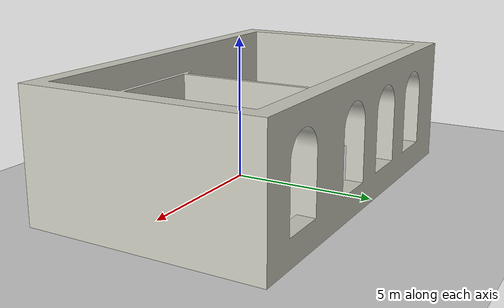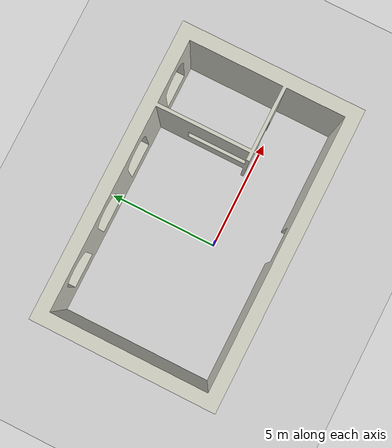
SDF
<?xml version="1.0" ?>
<sdf version="1.5">
  <world name="default">
    <!-- A global light source -->
    <include>
      <uri>model://sun</uri>
    </include>
    <!-- A ground plane -->
    <include>
      <uri>model://ground_plane</uri>
    </include>

    <physics name='default_physics' default='0' type='ode'>
      <gravity>0 0 -9.8066</gravity>
      <ode>
        <solver>
          <type>quick</type>
          <iters>10</iters>
          <sor>1.3</sor>
          <use_dynamic_moi_rescaling>0</use_dynamic_moi_rescaling>
        </solver>
        <constraints>
          <cfm>0</cfm>
          <erp>0.2</erp>
          <contact_max_correcting_vel>100</contact_max_correcting_vel>
          <contact_surface_layer>0.001</contact_surface_layer>
        </constraints>
      </ode>
      <max_step_size>0.004</max_step_size>
      <real_time_factor>1</real_time_factor>
      <real_time_update_rate>250</real_time_update_rate>
      <magnetic_field>6.0e-6 2.3e-5 -4.2e-5</magnetic_field>
    </physics>

    <include>
      <name>Walls</name>
      <uri>model://leoc6_walls</uri>
      <pose>-6 -3 0 0 0 0</pose>
    </include>

  </world>
</sdf>

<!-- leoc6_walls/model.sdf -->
<sdf version='1.7'>
  <model name='Walls'>
    <static>true</static>
    <link name='link_0'>

      <visual name='visual'>
        <geometry>
          <mesh>
            <uri>model://leoc6_walls/meshes/137493_00-M-LEO_Walls.stl</uri>
            <scale>0.001 0.001 0.001</scale>
          </mesh>
        </geometry>
        <material>
          <script>
            <name>Gazebo/PaintedWall</name>
            <uri>file://media/materials/scripts/gazebo.material</uri>
          </script>
        </material>
      </visual>

      <collision name='collision'>
        <geometry>
          <mesh>
            <uri>model://leoc6_walls/meshes/137493_00-M-LEO_Walls.stl</uri>
            <scale>0.001 0.001 0.001</scale>
          </mesh>
        </geometry>
      </collision>

    </link>

  </model>
</sdf>
